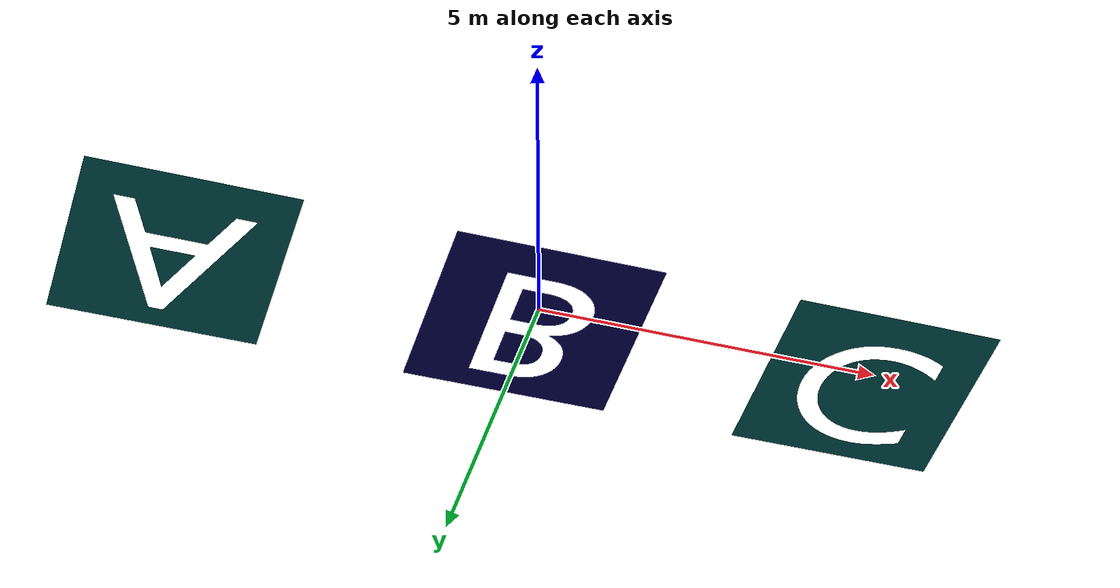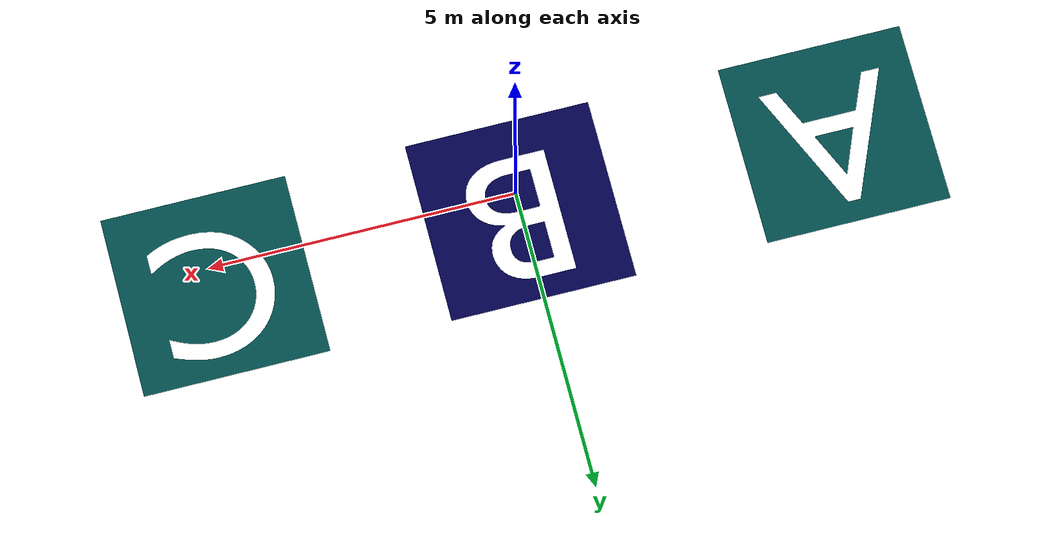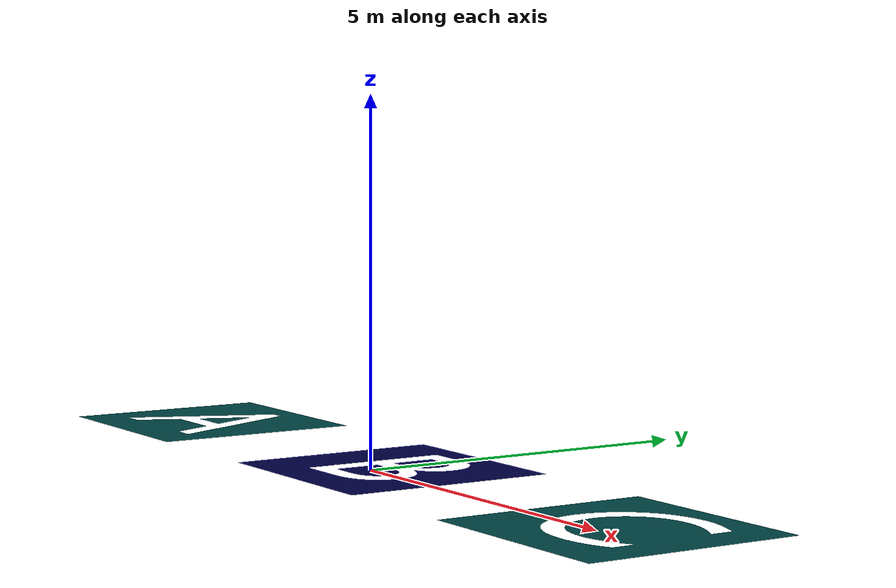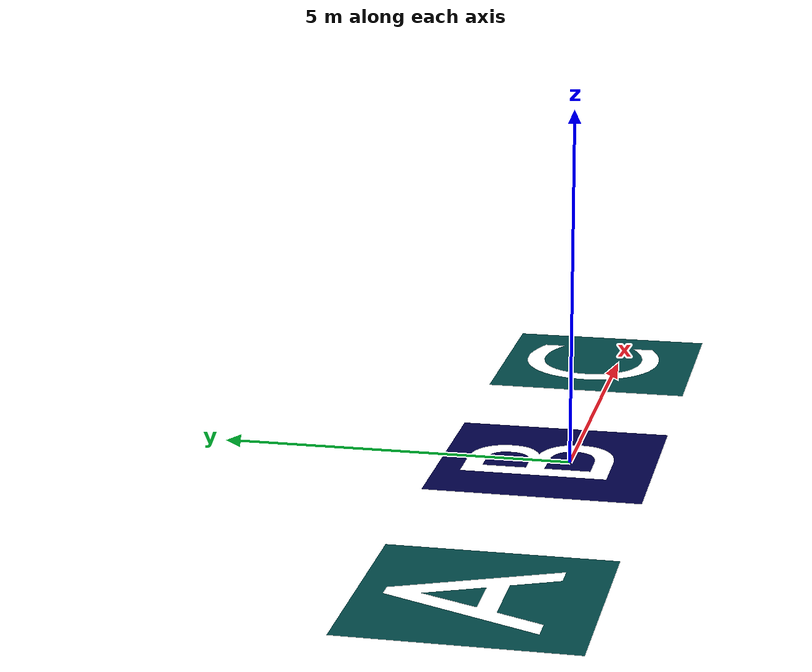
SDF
<?xml version="1.0"?>
<!--
  Development of this module has been funded by the Monterey Bay Aquarium
  Research Institute (MBARI) and the David and Lucile Packard Foundation
-->
<sdf version="1.6">
  <model name="ABCSign">
    <static>true</static>
    <link name="plate">
      <inertial>
        <mass>1</mass>
        <inertia>
          <ixx>1</ixx>
          <ixy>0</ixy>
          <ixz>0</ixz>
          <iyy>1</iyy>
          <iyz>0</iyz>
          <izz>1</izz>
        </inertia>
      </inertial>

      <collision name="collision">
        <geometry>
          <box>
            <size>13 3 0.01</size>
          </box>
        </geometry>
      </collision>

      <visual name="visual">
        <geometry>
          <mesh>
            <uri>meshes/ABCSign_5m.dae</uri>
          </mesh>
        </geometry>
      </visual>
    </link>
  </model>
</sdf>
